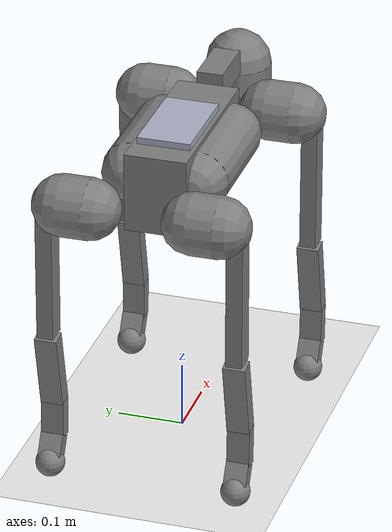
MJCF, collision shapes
<mujoco model="go2 scene">
      <include file="go2.xml"/>

      <statistic center="0 0 0.1" extent="0.8"/>

      <visual>
            <headlight diffuse="0.4 0.4 0.4" ambient="0.25 0.25 0.25" specular="0.25 0.25 0.25"/>
            <rgba haze="0.99 0.99 0.99 1"/>
            <global azimuth="-130" elevation="-20"/>
      </visual>
      <asset>
            <texture
                  type="skybox"
                  builtin="gradient"
                  rgb1="0.99 0.99 0.99"
                  rgb2="0.99 0.99 0.99"
                  width="512"
                  height="3072"
            />
            <texture
                  type="2d"
                  name="groundplane"
                  builtin="checker"
                  mark="edge"
                  rgb1="0.93 0.93 0.93"
                  rgb2="0.93 0.93 0.93"
                  markrgb="0 0 0"
                  width="250"
                  height="250"
            />
            <material name="groundplane" texture="groundplane" texuniform="true" texrepeat="5 5" reflectance="0.0"/>

      </asset>

      <worldbody>
            <light pos="0 0 5.0" dir="0 0 -1" directional="true" castshadow="false"/>

            <geom name="floor" size="0 0 0.05" type="plane" material="groundplane"/>
      </worldbody>
</mujoco>

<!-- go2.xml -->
<mujoco model="go2_description">
    <compiler angle="radian" autolimits="true"/>

    <option cone="elliptic" impratio="100"/>

    <default>
        <default class="go2">
            <joint axis="0 1 0"/>
            <geom friction="0.6" margin="0.001"/>
            <motor ctrlrange="-23.7 23.7"/>
            <default class="abduction">
                <joint axis="1 0 0" range="-1.0472 1.0472"/>
            </default>
            <default class="hip">
                <default class="front_hip">
                    <joint range="-1.5708 3.4907"/>
                </default>
                <default class="back_hip">
                    <joint range="-0.5236 4.5379"/>
                </default>
            </default>
            <default class="knee">
                <joint range="-2.7227 -0.83776"/>
                <motor ctrlrange="-45.43 45.43"/>
            </default>
            <default class="visual">
                <geom type="mesh" contype="0" conaffinity="0" group="2"/>
            </default>
            <default class="collision">
                <geom group="3"/>
            </default>
        </default>
    </default>

    <asset>
        <material name="metal" rgba=".9 .95 .95 1"/>
        <material name="black" rgba="0 0 0 1"/>
        <material name="white" rgba="1 1 1 1"/>
        <material name="gray" rgba="0.671705 0.692426 0.774270 1"/>

        <mesh file="assets/base_0.obj"/>
        <mesh file="assets/base_1.obj"/>
        <mesh file="assets/base_2.obj"/>
        <mesh file="assets/base_3.obj"/>
        <mesh file="assets/base_4.obj"/>
        <mesh file="assets/hip_0.obj"/>
        <mesh file="assets/hip_1.obj"/>
        <mesh file="assets/thigh_0.obj"/>
        <mesh file="assets/thigh_1.obj"/>
        <mesh file="assets/thigh_mirror_0.obj"/>
        <mesh file="assets/thigh_mirror_1.obj"/>
        <mesh file="assets/calf_0.obj"/>
        <mesh file="assets/calf_1.obj"/>
        <mesh file="assets/calf_mirror_0.obj"/>
        <mesh file="assets/calf_mirror_1.obj"/>
        <mesh file="assets/foot.obj"/>
    </asset>

    <worldbody>
        <body name="base" pos="0 0 0.445" childclass="go2">
            <inertial pos="0.021112 0 -0.005366" quat="-0.000543471 0.713435 -0.00173769 0.700719" mass="6.921"
                      diaginertia="0.107027 0.0980771 0.0244531"/>
            <freejoint/>

            <geom mesh="base_0" material="black" class="visual"/>
            <geom mesh="base_1" material="black" class="visual"/>
            <geom mesh="base_2" material="black" class="visual"/>
            <geom mesh="base_3" material="white" class="visual"/>
            <geom mesh="base_4" material="gray" class="visual"/>
            <geom size="0.07 0.04 0.01" pos="-0.02 0.0 0.06" material="gray" type="box" class="visual"/>

            <geom size="0.13 0.04675 0.06" type="box" class="collision"/>
            <geom size="0.07 0.04 0.01" pos="-0.02 0.0 0.06" type="box" class="collision"/>
            <geom size="0.045 0.02 0.02" pos="0.18 0.0 0.055" type="box" class="collision"/>
            <geom size="0.045 0.08" pos="0.0 0.05 0.01" quat="0.707107 0 0.707107 0" type="capsule" class="collision"/>
            <geom size="0.045 0.08" pos="0.0 -0.05 0.01" quat="0.707107 0 0.707107 0" type="capsule" class="collision"/>

            <geom size="0.05 0.018" pos="0.285 0 0.01" type="capsule" class="collision"/>
            <geom size="0.047" pos="0.293 0 -0.06" class="collision"/>

            <site name="imu" pos="-0.02557 0 0.04232"/>

            <body name="FL_hip" pos="0.1934 0.0465 0">
                <inertial pos="-0.0054 0.00194 -0.000105" quat="0.497014 0.499245 0.505462 0.498237" mass="0.678"
                          diaginertia="0.00088403 0.000596003 0.000479967"/>
                <joint name="FL_hip_joint" class="abduction" damping="0.1531" armature="0.0010" frictionloss="0.2884"/>
                <geom mesh="hip_0" material="metal" class="visual"/>
                <geom mesh="hip_1" material="gray" class="visual"/>
                <geom size="0.046 0.02" pos="0 0.05 0" quat="1 1 0 0" type="capsule" class="collision"/>
                <body name="FL_thigh" pos="0 0.0955 0">
                    <inertial pos="-0.00374 -0.0223 -0.0327" quat="0.829533 0.0847635 -0.0200632 0.551623" mass="1.152"
                              diaginertia="0.00594973 0.00584149 0.000878787"/>
                    <joint name="FL_thigh_joint" class="front_hip" damping="0.2406" armature="0.0197" frictionloss="0.1739"/>
                    <geom mesh="thigh_0" material="metal" class="visual"/>
                    <geom mesh="thigh_1" material="gray" class="visual"/>
                    <geom size="0.1065 0.01225 0.017" pos="0 0 -0.1065" quat="0.707107 0 0.707107 0" type="box"
                          class="collision"/>
                    <body name="FL_calf" pos="0 0 -0.213">
                        <inertial pos="0.00629595 -0.000622121 -0.141417"
                                  quat="0.710672 0.00154099 -0.00450087 0.703508"
                                  mass="0.241352" diaginertia="0.0014901 0.00146356 5.31397e-05"/>
                        <joint name="FL_calf_joint" class="knee" damping="0.1450" armature="0.0356" frictionloss="1.0151"/>
                        <geom mesh="calf_0" material="gray" class="visual"/>
                        <geom mesh="calf_1" material="black" class="visual"/>
                        <geom size="0.012 0.017  0.06" pos="0.008 0 -0.06" quat="0.994493 0 -0.104807 0" type="box"
                              class="collision"/>
                        <geom size="0.011 0.017  0.03" pos="0.02 0 -0.148" quat="0.999688 0 0.0249974 0" type="box"
                              class="collision"/>
                        <geom size="0.011 0.017  0.017" pos="0.008 0 -0.190" quat="0.999688 0 0.249974 0" type="box"
                              class="collision"/>
                        <geom pos="0 0 -0.213" mesh="foot" class="visual" material="black"/>

                        <!--geom name="FL" class="collision" size="0.022" pos="-0.002 0 -0.213" priority="1" condim="6"
                          friction="0.8 0.02 0.01"/-->

                        <body name="FL_foot" pos="-0.002 0 -0.213">
                            <inertial pos="0 0 0" mass="0.02" diaginertia="3.872e-06 3.872e-06 3.872e-06"/>
                            <!-- FL_foot only collision -->
                            <geom name="FL" class="collision" size="0.022"/>
                        </body>

                    </body>
                </body>
            </body>
            <body name="FR_hip" pos="0.1934 -0.0465 0">
                <inertial pos="-0.0054 -0.00194 -0.000105" quat="0.498237 0.505462 0.499245 0.497014" mass="0.678"
                          diaginertia="0.00088403 0.000596003 0.000479967"/>
                <joint name="FR_hip_joint" class="abduction" damping="0.2628" armature="0.0129" frictionloss="0.1835"/>
                <geom mesh="hip_0" material="metal" class="visual" quat="4.63268e-05 1 0 0"/>
                <geom mesh="hip_1" material="gray" class="visual" quat="4.63268e-05 1 0 0"/>
                <geom size="0.046 0.02" pos="0 -0.05 0" quat="0.707107 0.707107 0 0" type="capsule" class="collision"/>
                <body name="FR_thigh" pos="0 -0.0955 0">
                    <inertial pos="-0.00374 0.0223 -0.0327" quat="0.551623 -0.0200632 0.0847635 0.829533" mass="1.152"
                              diaginertia="0.00594973 0.00584149 0.000878787"/>
                    <joint name="FR_thigh_joint" class="front_hip" damping="0.1420" armature="0.0135" frictionloss="0.2386"/>
                    <geom mesh="thigh_mirror_0" material="metal" class="visual"/>
                    <geom mesh="thigh_mirror_1" material="gray" class="visual"/>
                    <geom size="0.1065 0.01225 0.017" pos="0 0 -0.1065" quat="0.707107 0 0.707107 0" type="box"
                          class="collision"/>
                    <body name="FR_calf" pos="0 0 -0.213">
                        <inertial pos="0.00629595 0.000622121 -0.141417" quat="0.703508 -0.00450087 0.00154099 0.710672"
                                  mass="0.241352" diaginertia="0.0014901 0.00146356 5.31397e-05"/>
                        <joint name="FR_calf_joint" class="knee" damping="0.1728" armature="0.0371" frictionloss="0.4912"/>
                        <geom mesh="calf_mirror_0" material="gray" class="visual"/>
                        <geom mesh="calf_mirror_1" material="black" class="visual"/>
                        <geom size="0.012 0.017  0.06" pos="0.008 0 -0.06" quat="0.994493 0 -0.104807 0" type="box"
                              class="collision"/>
                        <geom size="0.011 0.017  0.03" pos="0.02 0 -0.148" quat="0.999688 0 0.0249974 0" type="box"
                              class="collision"/>
                        <geom size="0.011 0.017  0.017" pos="0.008 0 -0.190" quat="0.999688 0 0.249974 0" type="box"
                              class="collision"/>
                        <geom pos="0 0 -0.213" mesh="foot" class="visual" material="black"/>

                        <!--geom name="FR" class="collision" size="0.022" pos="-0.002 0 -0.213" priority="1" condim="6"
                          friction="0.8 0.02 0.01"/-->

                        <body name="FR_foot" pos="-0.002 0 -0.213">
                            <inertial pos="0 0 0" mass="0.02" diaginertia="3.872e-06 3.872e-06 3.872e-06"/>
                            <!-- FR_foot only collision -->
                            <geom name="FR" class="collision" size="0.022"/>
                        </body>

                    </body>
                </body>
            </body>
            <body name="RL_hip" pos="-0.1934 0.0465 0">
                <inertial pos="0.0054 0.00194 -0.000105" quat="0.505462 0.498237 0.497014 0.499245" mass="0.678"
                          diaginertia="0.00088403 0.000596003 0.000479967"/>
                <joint name="RL_hip_joint" class="abduction" damping="0.2243" armature="0.0075" frictionloss="0.1550"/>
                <geom mesh="hip_0" material="metal" class="visual" quat="4.63268e-05 0 1 0"/>
                <geom mesh="hip_1" material="gray" class="visual" quat="4.63268e-05 0 1 0"/>
                <geom size="0.046 0.02" pos="0 0.05 0" quat="0.707107 0.707107 0 0" type="capsule" class="collision"/>
                <body name="RL_thigh" pos="0 0.0955 0">
                    <inertial pos="-0.00374 -0.0223 -0.0327" quat="0.829533 0.0847635 -0.0200632 0.551623" mass="1.152"
                              diaginertia="0.00594973 0.00584149 0.000878787"/>
                    <joint name="RL_thigh_joint" class="back_hip" damping="0.2352" armature="0.0205" frictionloss="0.1388"/>
                    <geom mesh="thigh_0" material="metal" class="visual"/>
                    <geom mesh="thigh_1" material="gray" class="visual"/>
                    <geom size="0.1065 0.01225 0.017" pos="0 0 -0.1065" quat="0.707107 0 0.707107 0" type="box"
                          class="collision"/>
                    <body name="RL_calf" pos="0 0 -0.213">
                        <inertial pos="0.00629595 -0.000622121 -0.141417"
                                  quat="0.710672 0.00154099 -0.00450087 0.703508"
                                  mass="0.241352" diaginertia="0.0014901 0.00146356 5.31397e-05"/>
                        <joint name="RL_calf_joint" class="knee" damping="0.1201" armature="0.0228" frictionloss="1.3573"/>
                        <geom mesh="calf_0" material="gray" class="visual"/>
                        <geom mesh="calf_1" material="black" class="visual"/>
                        <geom size="0.012 0.017  0.06" pos="0.008 0 -0.06" quat="0.994493 0 -0.104807 0" type="box"
                              class="collision"/>
                        <geom size="0.011 0.017  0.03" pos="0.02 0 -0.148" quat="0.999688 0 0.0249974 0" type="box"
                              class="collision"/>
                        <geom size="0.011 0.017  0.017" pos="0.008 0 -0.190" quat="0.999688 0 0.249974 0" type="box"
                              class="collision"/>
                        <geom pos="0 0 -0.213" mesh="foot" class="visual" material="black"/>

                        <!--geom name="RL" class="collision" size="0.022" pos="-0.002 0 -0.213" priority="1" condim="6"
                          friction="0.8 0.02 0.01"/-->

                        <body name="RL_foot" pos="-0.002 0 -0.213">
                            <inertial pos="0 0 0" mass="0.02" diaginertia="3.872e-06 3.872e-06 3.872e-06"/>
                            <!-- RL_foot only collision -->
                            <geom name="RL" class="collision" size="0.022"/>
                        </body>

                    </body>
                </body>
            </body>
            <body name="RR_hip" pos="-0.1934 -0.0465 0">
                <inertial pos="0.0054 -0.00194 -0.000105" quat="0.499245 0.497014 0.498237 0.505462" mass="0.678"
                          diaginertia="0.00088403 0.000596003 0.000479967"/>
                <joint name="RR_hip_joint" class="abduction" damping="0.2989" armature="0.0081" frictionloss="0.2488"/>
                <geom mesh="hip_0" material="metal" class="visual" quat="2.14617e-09 4.63268e-05 4.63268e-05 -1"/>
                <geom mesh="hip_1" material="gray" class="visual" quat="2.14617e-09 4.63268e-05 4.63268e-05 -1"/>
                <geom size="0.046 0.02" pos="0 -0.05 0" quat="0.707107 0.707107 0 0" type="capsule" class="collision"/>
                <body name="RR_thigh" pos="0 -0.0955 0">
                    <inertial pos="-0.00374 0.0223 -0.0327" quat="0.551623 -0.0200632 0.0847635 0.829533" mass="1.152"
                              diaginertia="0.00594973 0.00584149 0.000878787"/>
                    <joint name="RR_thigh_joint" class="back_hip" damping="0.1983" armature="0.0139" frictionloss="0.2484"/>
                    <geom mesh="thigh_mirror_0" material="metal" class="visual"/>
                    <geom mesh="thigh_mirror_1" material="gray" class="visual"/>
                    <geom size="0.1065 0.01225 0.017" pos="0 0 -0.1065" quat="0.707107 0 0.707107 0" type="box"
                          class="collision"/>
                    <body name="RR_calf" pos="0 0 -0.213">
                        <inertial pos="0.00629595 0.000622121 -0.141417" quat="0.703508 -0.00450087 0.00154099 0.710672"
                                  mass="0.241352" diaginertia="0.0014901 0.00146356 5.31397e-05"/>
                        <joint name="RR_calf_joint" class="knee" damping="0.1000" armature="0.0332" frictionloss="0.7893"/>
                        <geom mesh="calf_mirror_0" material="gray" class="visual"/>
                        <geom mesh="calf_mirror_1" material="black" class="visual"/>
                        <geom size="0.012 0.017  0.06" pos="0.008 0 -0.06" quat="0.994493 0 -0.104807 0" type="box"
                              class="collision"/>
                        <geom size="0.011 0.017  0.03" pos="0.02 0 -0.148" quat="0.999688 0 0.0249974 0" type="box"
                              class="collision"/>
                        <geom size="0.011 0.017  0.017" pos="0.008 0 -0.190" quat="0.999688 0 0.249974 0" type="box"
                              class="collision"/>
                        <geom pos="0 0 -0.213" mesh="foot" class="visual" material="black"/>

                        <!--geom name="RR" class="collision" size="0.022" pos="-0.002 0 -0.213" priority="1" condim="6"
                          friction="0.8 0.02 0.01"/-->

                        <body name="RR_foot" pos="-0.002 0 -0.213">
                            <inertial pos="0 0 0" mass="0.02" diaginertia="3.872e-06 3.872e-06 3.872e-06"/>
                            <!-- RR_foot only collision -->
                            <geom name="RR" class="collision" size="0.022"/>
                        </body>

                    </body>
                </body>
            </body>
        </body>
    </worldbody>

    <actuator>
        <motor class="abduction" name="FL_hip" joint="FL_hip_joint"/>
        <motor class="hip" name="FL_thigh" joint="FL_thigh_joint"/>
        <motor class="knee" name="FL_calf" joint="FL_calf_joint"/>
        <motor class="abduction" name="FR_hip" joint="FR_hip_joint"/>
        <motor class="hip" name="FR_thigh" joint="FR_thigh_joint"/>
        <motor class="knee" name="FR_calf" joint="FR_calf_joint"/>
        <motor class="abduction" name="RL_hip" joint="RL_hip_joint"/>
        <motor class="hip" name="RL_thigh" joint="RL_thigh_joint"/>
        <motor class="knee" name="RL_calf" joint="RL_calf_joint"/>
        <motor class="abduction" name="RR_hip" joint="RR_hip_joint"/>
        <motor class="hip" name="RR_thigh" joint="RR_thigh_joint"/>
        <motor class="knee" name="RR_calf" joint="RR_calf_joint"/>
    </actuator>

    <sensor>
        <accelerometer name="imu_acc" site="imu"/>
        <gyro name="imu_gyro" site="imu"/>
        <framepos name="imu_pos" objtype="site" objname="imu"/>
        <framequat name="imu_quat" objtype="site" objname="imu"/>

        <jointpos name="FL_hip_joint_pos" joint="FL_hip_joint"/>
        <jointpos name="FL_thigh_joint_pos" joint="FL_thigh_joint"/>
        <jointpos name="FL_calf_joint_pos" joint="FL_calf_joint"/>
        <jointpos name="FR_hip_joint_pos" joint="FR_hip_joint"/>
        <jointpos name="FR_thigh_joint_pos" joint="FR_thigh_joint"/>
        <jointpos name="FR_calf_joint_pos" joint="FR_calf_joint"/>
        <jointpos name="RL_hip_joint_pos" joint="RL_hip_joint"/>
        <jointpos name="RL_thigh_joint_pos" joint="RL_thigh_joint"/>
        <jointpos name="RL_calf_joint_pos" joint="RL_calf_joint"/>
        <jointpos name="RR_hip_joint_pos" joint="RR_hip_joint"/>
        <jointpos name="RR_thigh_joint_pos" joint="RR_thigh_joint"/>
        <jointpos name="RR_calf_joint_pos" joint="RR_calf_joint"/>
    </sensor>

    <keyframe>
        <key name="home" qpos="0 0 0.27 1 0 0 0 0 0.9 -1.8 0 0.9 -1.8 0 0.9 -1.8 0 0.9 -1.8"/>
        <key name="down" qpos="0 0 0.05 1 0 0 0 0.0 1.21 -2.794 0.0 1.21 -2.794 0.40 1.21 -2.794 -0.40 1.21 -2.794"/>
        <key name="sys_id_1" qpos="0 0 0.05 1 0 0 0 0.0 1.21 -2.5 0.0 1.21 -2.5 0.0 1.21 -2.5 0.0 1.21 -2.5"/>
        <key name="sys_id_2" qpos="0 0 0.05 1 0 0 0 0.6 0.5 -1.4 0.6 0.5 -1.4 0.6 0.5 -1.4 0.6 0.5 -1.4"/>
    </keyframe>
</mujoco>
